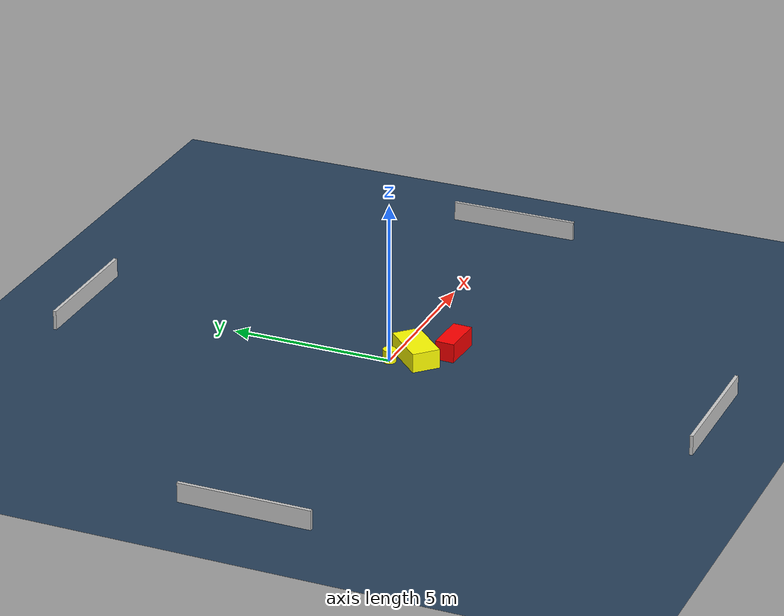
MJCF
<?xml version="1.0" ?>
<mujoco model="generated_environment">
  <option timestep="0.01" integrator="RK4" cone="elliptic"/>
  <default>
    <geom density="1"/>
  </default>
  <asset>
    <texture builtin="gradient" height="3072" name="skybox" rgb1="0.3 0.5 0.7" rgb2="0 0 0" type="skybox" width="512"/>
    <texture builtin="checker" height="300" name="groundplane" rgb1="0.2 0.3 0.4" rgb2="0.1 0.2 0.3" type="2d" width="300"/>
    <material name="groundplane" reflectance="0.2" texrepeat="5 5" texture="groundplane"/>
  </asset>
  <worldbody>
    <light dir="0 0 -1" directional="true" pos="0 0 1.5"/>
    <geom condim="3" friction="0.5 0.005 0.001" material="groundplane" name="floor" pos="0 0 0" size="0 0 0.05" type="plane"/>
    <body name="walls">
      <geom name="wall_1" condim="4" pos="-10.0 0.0 0.3" rgba="0.800000011920929 0.800000011920929 0.800000011920929 1.0" size="0.05 2.0 0.3" type="box"/>
      <geom name="wall_2" condim="4" pos="10.0 0.0 0.3" rgba="0.800000011920929 0.800000011920929 0.800000011920929 1.0" size="0.05 2.0 0.3" type="box"/>
      <geom name="wall_3" condim="4" pos="0.0 -10.0 0.3" rgba="0.800000011920929 0.800000011920929 0.800000011920929 1.0" size="2.0 0.05 0.3" type="box"/>
      <geom name="wall_4" condim="4" pos="0.0 10.0 0.3" rgba="0.800000011920929 0.800000011920929 0.800000011920929 1.0" size="2.0 0.05 0.3" type="box"/>
    </body>
    <body name="robot">
      <joint name="joint_x" type="slide" pos="0 0 0" axis="1 0 0"/>
      <joint name="joint_y" type="slide" pos="0 0 0" axis="0 1 0"/>
      <geom name="robot" type="cylinder" pos="0.0 0.0 0.2" size="0.2 0.2 0.0" mass="5.0" friction="1.0 0.005 0.0001" condim="4" rgba="1.0 1.0 0.0 1.0"/>
    </body>
    <body name="obstacle_1_movable">
      <geom name="obstacle_1_movable" condim="4" pos="0.4113708531550519 -0.667319045993537 0.3" euler="0 0 225.80254916085005" friction="0.0 0.005 0.001" rgba="1.0 1.0 0.0 1.0" size="0.7666384046013652 0.430216355272184 0.3" type="box" mass="0.1"/>
      <joint type="free"/>
    </body>
    <body name="obstacle_2_static">
      <geom name="obstacle_2_static" condim="4" pos="1.2737956061814304 -1.5061261000911006 0.3" euler="0 0 267.7001318426466" friction="0.0 0.005 0.001" rgba="1.0 0.0 0.0 1.0" size="0.2945553145018834 0.6434918929546265 0.3" type="box"/>
    </body>
  </worldbody>
  <actuator>
    <motor name="actuator_x" joint="joint_x" gear="1" ctrlrange="-1 1"/>
    <motor name="actuator_y" joint="joint_y" gear="1" ctrlrange="-1 1"/>
  </actuator>
</mujoco>
